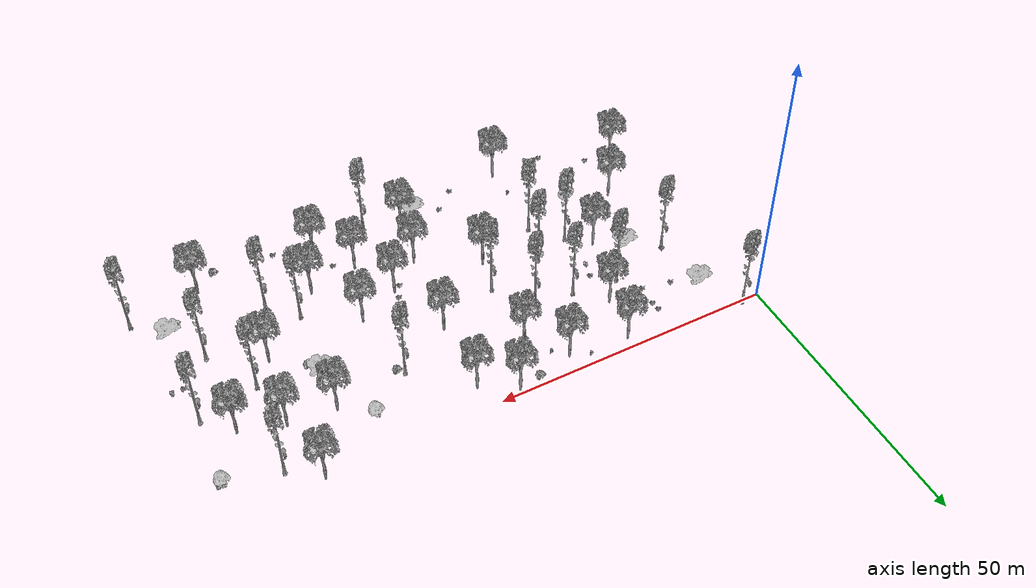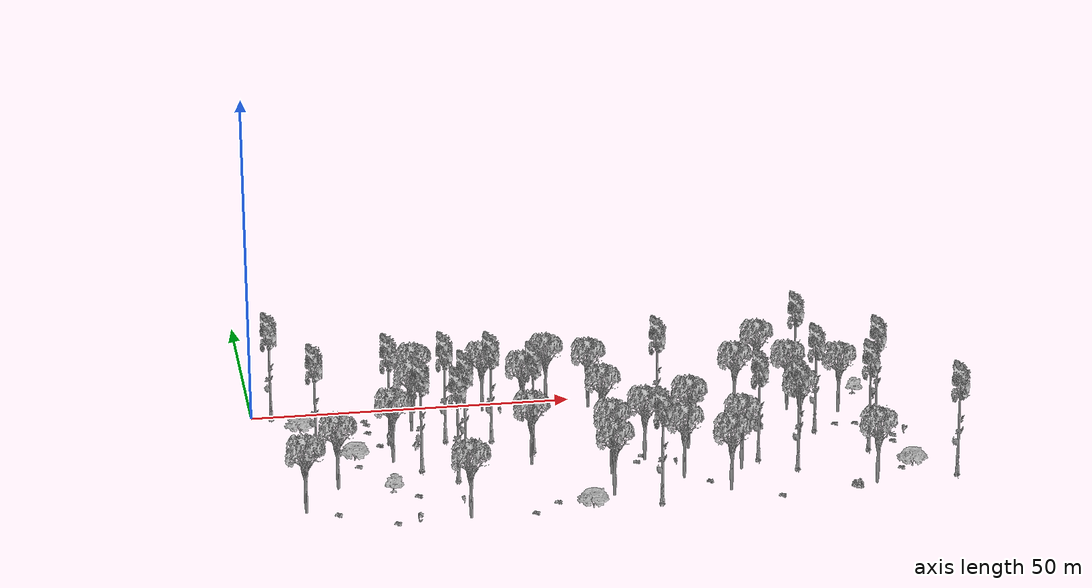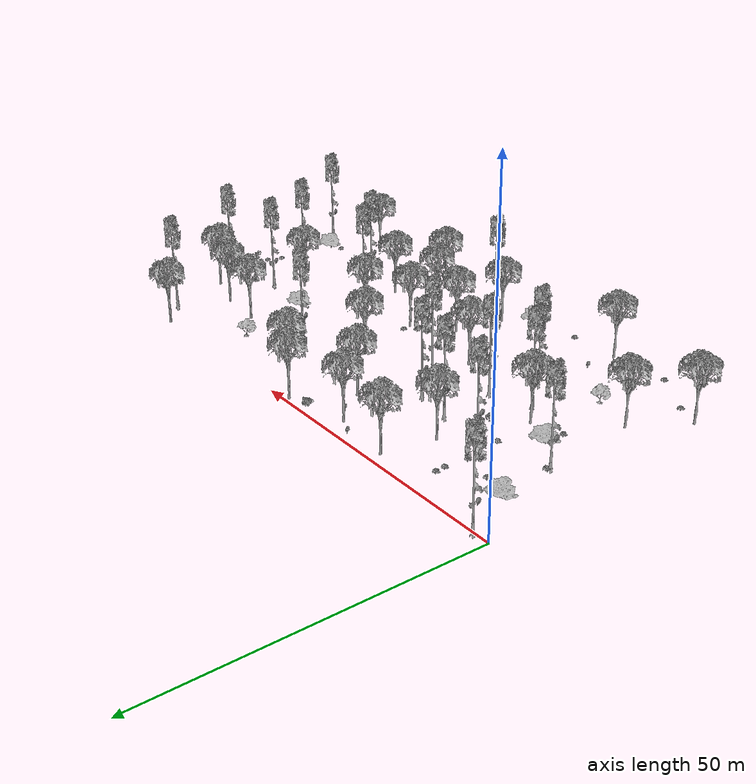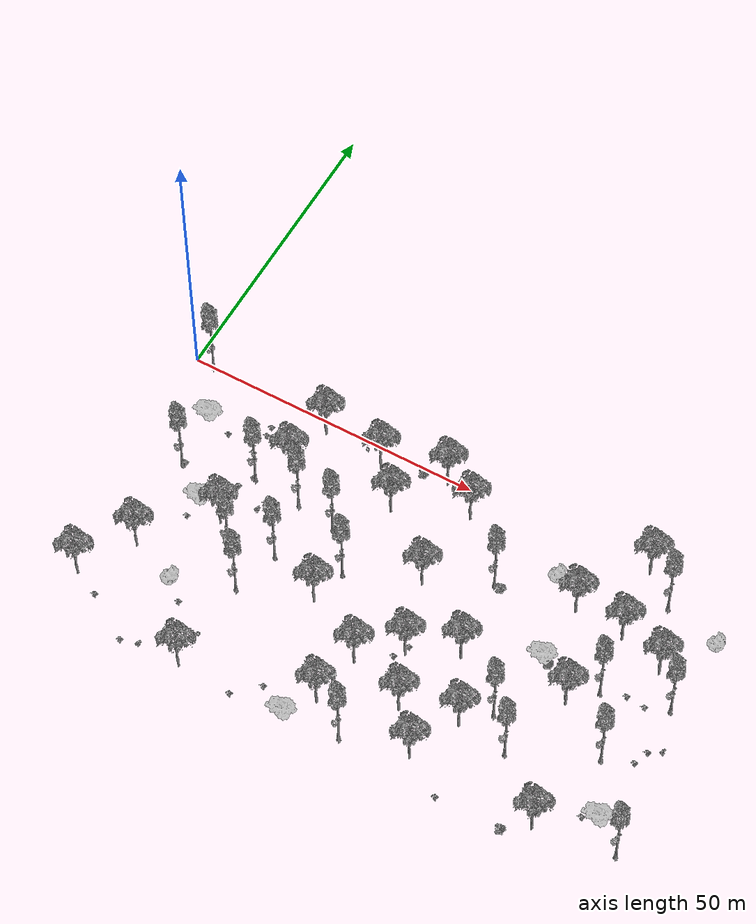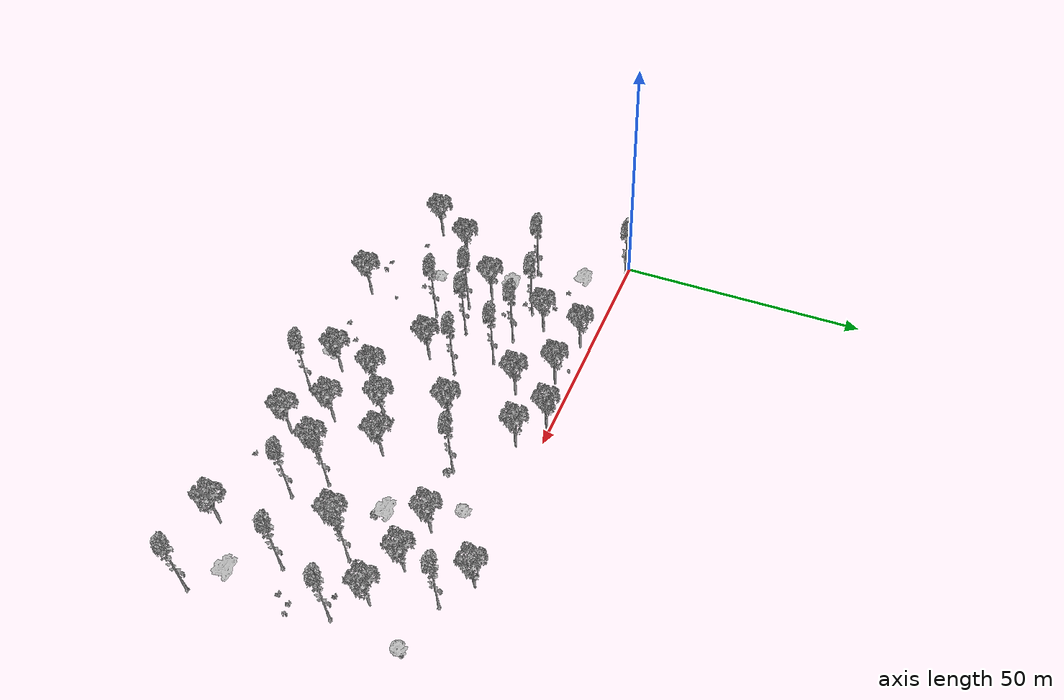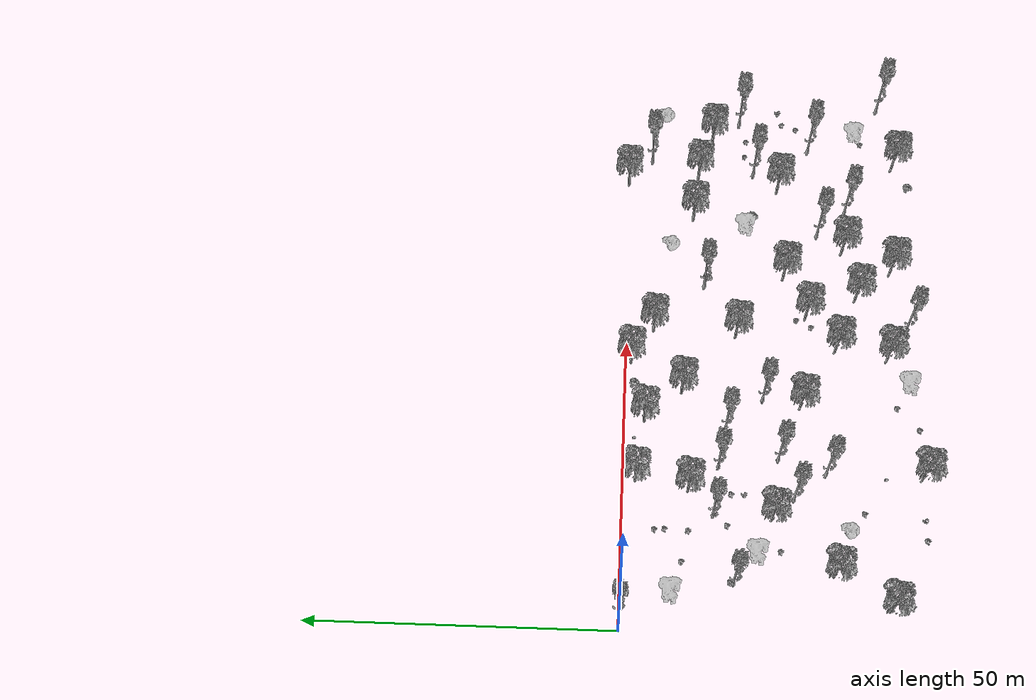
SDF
<sdf version="1.7">
 <world name="forest">
  <model name="controllable_camera">
   <pose>70 0 130 -1.5707 1.5707 0</pose>
   <static>true</static>
   <link name="base_link">
    <inertial><mass>0.1</mass><inertia><ixx>0.0001</ixx><iyy>0.0001</iyy><izz>0.0001</izz></inertia></inertial>
    <sensor name="gui_camera" type="rgbd_camera">
     <camera name="camera_front">
      <horizontal_fov>1.0472</horizontal_fov>
      <lens><intrinsics><fx>277.1</fx><fy>277.1</fy><cx>160.5</cx><cy>120.5</cy><s>0</s></intrinsics></lens>
      <distortion><k1>0.0</k1><k2>0.0</k2><k3>0.0</k3><p1>0.0</p1><p2>0.0</p2><center>0.5 0.5</center></distortion>
      <image><width>240</width><height>240</height><format>R8G8B8</format></image>
      <clip><near>0.01</near><far>300</far></clip>
      <depth_camera><clip><near>0.1</near><far>10</far></clip></depth_camera>
      <noise><type>gaussian</type><mean>0</mean><stddev>0.007</stddev></noise>
     </camera>
     <always_on>true</always_on>
     <update_rate>10</update_rate>
     <visualize>true</visualize>
    </sensor>
    <gravity>0</gravity>
   </link>
  </model>
  <model name="Tree 0">
   <static>1</static>
   <pose>29.54902566851168 -25.515385715936713 0 1.57079 -0 0</pose>
   <link name="link">
    <collision name="collision">
     <geometry><mesh><scale>3.5 5 3.5</scale><uri>model://tree_9/meshes/tree_9.obj</uri></mesh></geometry>
    </collision>
    <visual name="visual">
     <geometry><mesh><scale>3.5 5 3.5</scale><uri>model://tree_9/meshes/tree_9.obj</uri></mesh></geometry>
    </visual>
   </link>
  </model>
  <model name="Tree 3">
   <static>1</static>
   <pose>53.799025668511675 -47.737607938158924 0 1.57079 -0 0</pose>
   <link name="link">
    <collision name="collision">
     <geometry><mesh><scale>3.5 5 3.5</scale><uri>model://tree_9/meshes/tree_9.obj</uri></mesh></geometry>
    </collision>
    <visual name="visual">
     <geometry><mesh><scale>3.5 5 3.5</scale><uri>model://tree_9/meshes/tree_9.obj</uri></mesh></geometry>
    </visual>
   </link>
  </model>
  <model name="Tree 5">
   <static>1</static>
   <pose>90.17402566851167 -14.404274604825588 0 1.57079 -0 0</pose>
   <link name="link">
    <collision name="collision">
     <geometry><mesh><scale>3.5 5 3.5</scale><uri>model://tree_2/meshes/tree_2.obj</uri></mesh></geometry>
    </collision>
    <visual name="visual">
     <geometry><mesh><scale>3.5 5 3.5</scale><uri>model://tree_2/meshes/tree_2.obj</uri></mesh></geometry>
    </visual>
   </link>
  </model>
  <model name="Tree 6">
   <static>1</static>
   <pose>17.42402566851168 -36.62649682704782 0 1.57079 -0 0</pose>
   <link name="link">
    <collision name="collision">
     <geometry><mesh><scale>4 2.5 4</scale><uri>model://tree_1/meshes/tree_1.obj</uri></mesh></geometry>
    </collision>
    <visual name="visual">
     <geometry><mesh><scale>4 2.5 4</scale><uri>model://tree_1/meshes/tree_1.obj</uri></mesh></geometry>
    </visual>
   </link>
  </model>
  <model name="Tree 8">
   <static>1</static>
   <pose>35.611525668511675 -3.2931634937144807 0 1.57079 -0 0</pose>
   <link name="link">
    <collision name="collision">
     <geometry><mesh><scale>3.5 5 3.5</scale><uri>model://tree_2/meshes/tree_2.obj</uri></mesh></geometry>
    </collision>
    <visual name="visual">
     <geometry><mesh><scale>3.5 5 3.5</scale><uri>model://tree_2/meshes/tree_2.obj</uri></mesh></geometry>
    </visual>
   </link>
  </model>
  <model name="Tree 9">
   <static>1</static>
   <pose>84.11152566851167 -21.811682012232996 0 1.57079 -0 0</pose>
   <link name="link">
    <collision name="collision">
     <geometry><mesh><scale>3.5 5 3.5</scale><uri>model://tree_9/meshes/tree_9.obj</uri></mesh></geometry>
    </collision>
    <visual name="visual">
     <geometry><mesh><scale>3.5 5 3.5</scale><uri>model://tree_9/meshes/tree_9.obj</uri></mesh></geometry>
    </visual>
   </link>
  </model>
  <model name="Tree 12">
   <static>1</static>
   <pose>47.736525668511675 -44.03390423445522 0 1.57079 -0 0</pose>
   <link name="link">
    <collision name="collision">
     <geometry><mesh><scale>3.5 5 3.5</scale><uri>model://tree_2/meshes/tree_2.obj</uri></mesh></geometry>
    </collision>
    <visual name="visual">
     <geometry><mesh><scale>3.5 5 3.5</scale><uri>model://tree_2/meshes/tree_2.obj</uri></mesh></geometry>
    </visual>
   </link>
  </model>
  <model name="Tree 14">
   <static>1</static>
   <pose>23.48652566851168 -10.700570901121885 0 1.57079 -0 0</pose>
   <link name="link">
    <collision name="collision">
     <geometry><mesh><scale>3.5 5 3.5</scale><uri>model://tree_2/meshes/tree_2.obj</uri></mesh></geometry>
    </collision>
    <visual name="visual">
     <geometry><mesh><scale>3.5 5 3.5</scale><uri>model://tree_2/meshes/tree_2.obj</uri></mesh></geometry>
    </visual>
   </link>
  </model>
  <model name="Tree 15">
   <static>1</static>
   <pose>71.98652566851167 -32.92279312334412 0 1.57079 -0 0</pose>
   <link name="link">
    <collision name="collision">
     <geometry><mesh><scale>3.5 5 3.5</scale><uri>model://tree_9/meshes/tree_9.obj</uri></mesh></geometry>
    </collision>
    <visual name="visual">
     <geometry><mesh><scale>3.5 5 3.5</scale><uri>model://tree_9/meshes/tree_9.obj</uri></mesh></geometry>
    </visual>
   </link>
  </model>
  <model name="Tree 17">
   <static>1</static>
   <pose>81.08027566851167 0.4105402099892288 0 1.57079 -0 0</pose>
   <link name="link">
    <collision name="collision">
     <geometry><mesh><scale>3.5 5 3.5</scale><uri>model://tree_2/meshes/tree_2.obj</uri></mesh></geometry>
    </collision>
    <visual name="visual">
     <geometry><mesh><scale>3.5 5 3.5</scale><uri>model://tree_2/meshes/tree_2.obj</uri></mesh></geometry>
    </visual>
   </link>
  </model>
  <model name="Tree 18">
   <static>1</static>
   <pose>8.330275668511678 -18.107978308529294 0 1.57079 -0 0</pose>
   <link name="link">
    <collision name="collision">
     <geometry><mesh><scale>3.5 5 3.5</scale><uri>model://tree_9/meshes/tree_9.obj</uri></mesh></geometry>
    </collision>
    <visual name="visual">
     <geometry><mesh><scale>3.5 5 3.5</scale><uri>model://tree_9/meshes/tree_9.obj</uri></mesh></geometry>
    </visual>
   </link>
  </model>
  <model name="Tree 21">
   <static>1</static>
   <pose>93.20527566851167 -40.33020053075151 0 1.57079 -0 0</pose>
   <link name="link">
    <collision name="collision">
     <geometry><mesh><scale>3 2 3</scale><uri>model://tree_3/meshes/tree_3.obj</uri></mesh></geometry>
    </collision>
    <visual name="visual">
     <geometry><mesh><scale>3 2 3</scale><uri>model://tree_3/meshes/tree_3.obj</uri></mesh></geometry>
    </visual>
   </link>
  </model>
  <model name="Tree 23">
   <static>1</static>
   <pose>68.95527566851167 -6.996867197418183 0 1.57079 -0 0</pose>
   <link name="link">
    <collision name="collision">
     <geometry><mesh><scale>4 2.5 4</scale><uri>model://tree_1/meshes/tree_1.obj</uri></mesh></geometry>
    </collision>
    <visual name="visual">
     <geometry><mesh><scale>4 2.5 4</scale><uri>model://tree_1/meshes/tree_1.obj</uri></mesh></geometry>
    </visual>
   </link>
  </model>
  <model name="Tree 24">
   <static>1</static>
   <pose>38.642775668511675 -29.21908941964042 0 1.57079 -0 0</pose>
   <link name="link">
    <collision name="collision">
     <geometry><mesh><scale>3.5 5 3.5</scale><uri>model://tree_2/meshes/tree_2.obj</uri></mesh></geometry>
    </collision>
    <visual name="visual">
     <geometry><mesh><scale>3.5 5 3.5</scale><uri>model://tree_2/meshes/tree_2.obj</uri></mesh></geometry>
    </visual>
   </link>
  </model>
  <model name="Tree 27">
   <static>1</static>
   <pose>62.892775668511675 -26.749953617171283 0 1.57079 -0 0</pose>
   <link name="link">
    <collision name="collision">
     <geometry><mesh><scale>3.5 5 3.5</scale><uri>model://tree_2/meshes/tree_2.obj</uri></mesh></geometry>
    </collision>
    <visual name="visual">
     <geometry><mesh><scale>3.5 5 3.5</scale><uri>model://tree_2/meshes/tree_2.obj</uri></mesh></geometry>
    </visual>
   </link>
  </model>
  <model name="Tree 30">
   <static>1</static>
   <pose>26.51777566851168 -48.97217583939349 0 1.57079 -0 0</pose>
   <link name="link">
    <collision name="collision">
     <geometry><mesh><scale>3.5 5 3.5</scale><uri>model://tree_2/meshes/tree_2.obj</uri></mesh></geometry>
    </collision>
    <visual name="visual">
     <geometry><mesh><scale>3.5 5 3.5</scale><uri>model://tree_2/meshes/tree_2.obj</uri></mesh></geometry>
    </visual>
   </link>
  </model>
  <model name="Tree 32">
   <static>1</static>
   <pose>28.03340066851168 -15.638842506060158 0 1.57079 -0 0</pose>
   <link name="link">
    <collision name="collision">
     <geometry><mesh><scale>3.5 5 3.5</scale><uri>model://tree_9/meshes/tree_9.obj</uri></mesh></geometry>
    </collision>
    <visual name="visual">
     <geometry><mesh><scale>3.5 5 3.5</scale><uri>model://tree_9/meshes/tree_9.obj</uri></mesh></geometry>
    </visual>
   </link>
  </model>
  <model name="Tree 33">
   <static>1</static>
   <pose>76.53340066851167 -37.86106472828238 0 1.57079 -0 0</pose>
   <link name="link">
    <collision name="collision">
     <geometry><mesh><scale>3.5 5 3.5</scale><uri>model://tree_9/meshes/tree_9.obj</uri></mesh></geometry>
    </collision>
    <visual name="visual">
     <geometry><mesh><scale>3.5 5 3.5</scale><uri>model://tree_9/meshes/tree_9.obj</uri></mesh></geometry>
    </visual>
   </link>
  </model>
  <model name="Tree 35">
   <static>1</static>
   <pose>52.283400668511675 -4.5277313949490505 0 1.57079 -0 0</pose>
   <link name="link">
    <collision name="collision">
     <geometry><mesh><scale>3.5 5 3.5</scale><uri>model://tree_2/meshes/tree_2.obj</uri></mesh></geometry>
    </collision>
    <visual name="visual">
     <geometry><mesh><scale>3.5 5 3.5</scale><uri>model://tree_2/meshes/tree_2.obj</uri></mesh></geometry>
    </visual>
   </link>
  </model>
  <model name="Tree 36">
   <static>1</static>
   <pose>40.158400668511675 -23.046249913467566 0 1.57079 -0 0</pose>
   <link name="link">
    <collision name="collision">
     <geometry><mesh><scale>3.5 5 3.5</scale><uri>model://tree_9/meshes/tree_9.obj</uri></mesh></geometry>
    </collision>
    <visual name="visual">
     <geometry><mesh><scale>3.5 5 3.5</scale><uri>model://tree_9/meshes/tree_9.obj</uri></mesh></geometry>
    </visual>
   </link>
  </model>
  <model name="Tree 39">
   <static>1</static>
   <pose>64.40840066851167 -45.26847213568979 0 1.57079 -0 0</pose>
   <link name="link">
    <collision name="collision">
     <geometry><mesh><scale>3.5 5 3.5</scale><uri>model://tree_2/meshes/tree_2.obj</uri></mesh></geometry>
    </collision>
    <visual name="visual">
     <geometry><mesh><scale>3.5 5 3.5</scale><uri>model://tree_2/meshes/tree_2.obj</uri></mesh></geometry>
    </visual>
   </link>
  </model>
  <model name="Tree 41">
   <static>1</static>
   <pose>82.59590066851167 -11.935138802356455 0 1.57079 -0 0</pose>
   <link name="link">
    <collision name="collision">
     <geometry><mesh><scale>3.5 5 3.5</scale><uri>model://tree_2/meshes/tree_2.obj</uri></mesh></geometry>
    </collision>
    <visual name="visual">
     <geometry><mesh><scale>3.5 5 3.5</scale><uri>model://tree_2/meshes/tree_2.obj</uri></mesh></geometry>
    </visual>
   </link>
  </model>
  <model name="Tree 42">
   <static>1</static>
   <pose>9.845900668511678 -34.15736102457869 0 1.57079 -0 0</pose>
   <link name="link">
    <collision name="collision">
     <geometry><mesh><scale>3.5 5 3.5</scale><uri>model://tree_2/meshes/tree_2.obj</uri></mesh></geometry>
    </collision>
    <visual name="visual">
     <geometry><mesh><scale>3.5 5 3.5</scale><uri>model://tree_2/meshes/tree_2.obj</uri></mesh></geometry>
    </visual>
   </link>
  </model>
  <model name="Tree 44">
   <static>1</static>
   <pose>46.220900668511675 -0.824027691245341 0 1.57079 -0 0</pose>
   <link name="link">
    <collision name="collision">
     <geometry><mesh><scale>3.5 5 3.5</scale><uri>model://tree_2/meshes/tree_2.obj</uri></mesh></geometry>
    </collision>
    <visual name="visual">
     <geometry><mesh><scale>3.5 5 3.5</scale><uri>model://tree_2/meshes/tree_2.obj</uri></mesh></geometry>
    </visual>
   </link>
  </model>
  <model name="Tree 45">
   <static>1</static>
   <pose>94.72090066851167 -19.34254620976386 0 1.57079 -0 0</pose>
   <link name="link">
    <collision name="collision">
     <geometry><mesh><scale>3.5 5 3.5</scale><uri>model://tree_9/meshes/tree_9.obj</uri></mesh></geometry>
    </collision>
    <visual name="visual">
     <geometry><mesh><scale>3.5 5 3.5</scale><uri>model://tree_9/meshes/tree_9.obj</uri></mesh></geometry>
    </visual>
   </link>
  </model>
  <model name="Tree 50">
   <static>1</static>
   <pose>6.8146506685116774 -8.231435098652753 0 1.57079 -0 0</pose>
   <link name="link">
    <collision name="collision">
     <geometry><mesh><scale>3 2 3</scale><uri>model://tree_3/meshes/tree_3.obj</uri></mesh></geometry>
    </collision>
    <visual name="visual">
     <geometry><mesh><scale>3 2 3</scale><uri>model://tree_3/meshes/tree_3.obj</uri></mesh></geometry>
    </visual>
   </link>
  </model>
  <model name="Tree 51">
   <static>1</static>
   <pose>55.314650668511675 -30.453657320874985 0 1.57079 -0 0</pose>
   <link name="link">
    <collision name="collision">
     <geometry><mesh><scale>3.5 5 3.5</scale><uri>model://tree_2/meshes/tree_2.obj</uri></mesh></geometry>
    </collision>
    <visual name="visual">
     <geometry><mesh><scale>3.5 5 3.5</scale><uri>model://tree_2/meshes/tree_2.obj</uri></mesh></geometry>
    </visual>
   </link>
  </model>
  <model name="Tree 54">
   <static>1</static>
   <pose>18.93965066851168 -24.280817814702132 0 1.57079 -0 0</pose>
   <link name="link">
    <collision name="collision">
     <geometry><mesh><scale>3.5 5 3.5</scale><uri>model://tree_2/meshes/tree_2.obj</uri></mesh></geometry>
    </collision>
    <visual name="visual">
     <geometry><mesh><scale>3.5 5 3.5</scale><uri>model://tree_2/meshes/tree_2.obj</uri></mesh></geometry>
    </visual>
   </link>
  </model>
  <model name="Tree 57">
   <static>1</static>
   <pose>85.62715066851167 -46.503040036924354 0 1.57079 -0 0</pose>
   <link name="link">
    <collision name="collision">
     <geometry><mesh><scale>3.5 5 3.5</scale><uri>model://tree_2/meshes/tree_2.obj</uri></mesh></geometry>
    </collision>
    <visual name="visual">
     <geometry><mesh><scale>3.5 5 3.5</scale><uri>model://tree_2/meshes/tree_2.obj</uri></mesh></geometry>
    </visual>
   </link>
  </model>
  <model name="Tree 59">
   <static>1</static>
   <pose>61.377150668511675 -13.169706703591025 0 1.57079 -0 0</pose>
   <link name="link">
    <collision name="collision">
     <geometry><mesh><scale>3.5 5 3.5</scale><uri>model://tree_9/meshes/tree_9.obj</uri></mesh></geometry>
    </collision>
    <visual name="visual">
     <geometry><mesh><scale>3.5 5 3.5</scale><uri>model://tree_9/meshes/tree_9.obj</uri></mesh></geometry>
    </visual>
   </link>
  </model>
  <model name="Tree 60">
   <static>1</static>
   <pose>49.252150668511675 -35.39192892581326 0 1.57079 -0 0</pose>
   <link name="link">
    <collision name="collision">
     <geometry><mesh><scale>3.5 5 3.5</scale><uri>model://tree_2/meshes/tree_2.obj</uri></mesh></geometry>
    </collision>
    <visual name="visual">
     <geometry><mesh><scale>3.5 5 3.5</scale><uri>model://tree_2/meshes/tree_2.obj</uri></mesh></geometry>
    </visual>
   </link>
  </model>
  <model name="Tree 62">
   <static>1</static>
   <pose>25.00215066851168 -2.058595592479911 0 1.57079 -0 0</pose>
   <link name="link">
    <collision name="collision">
     <geometry><mesh><scale>3.5 5 3.5</scale><uri>model://tree_2/meshes/tree_2.obj</uri></mesh></geometry>
    </collision>
    <visual name="visual">
     <geometry><mesh><scale>3.5 5 3.5</scale><uri>model://tree_2/meshes/tree_2.obj</uri></mesh></geometry>
    </visual>
   </link>
  </model>
  <model name="Tree 63">
   <static>1</static>
   <pose>73.50215066851167 -20.57711411099843 0 1.57079 -0 0</pose>
   <link name="link">
    <collision name="collision">
     <geometry><mesh><scale>3 2 3</scale><uri>model://tree_3/meshes/tree_3.obj</uri></mesh></geometry>
    </collision>
    <visual name="visual">
     <geometry><mesh><scale>3 2 3</scale><uri>model://tree_3/meshes/tree_3.obj</uri></mesh></geometry>
    </visual>
   </link>
  </model>
  <model name="Tree 66">
   <static>1</static>
   <pose>4.5412131685116774 -42.79933633322065 0 1.57079 -0 0</pose>
   <link name="link">
    <collision name="collision">
     <geometry><mesh><scale>3.5 5 3.5</scale><uri>model://tree_2/meshes/tree_2.obj</uri></mesh></geometry>
    </collision>
    <visual name="visual">
     <geometry><mesh><scale>3.5 5 3.5</scale><uri>model://tree_2/meshes/tree_2.obj</uri></mesh></geometry>
    </visual>
   </link>
  </model>
  <model name="Tree 68">
   <static>1</static>
   <pose>40.916213168511675 -9.466002999887316 0 1.57079 -0 0</pose>
   <link name="link">
    <collision name="collision">
     <geometry><mesh><scale>3.5 5 3.5</scale><uri>model://tree_2/meshes/tree_2.obj</uri></mesh></geometry>
    </collision>
    <visual name="visual">
     <geometry><mesh><scale>3.5 5 3.5</scale><uri>model://tree_2/meshes/tree_2.obj</uri></mesh></geometry>
    </visual>
   </link>
  </model>
  <model name="Tree 69">
   <static>1</static>
   <pose>89.41621316851167 -31.688225222109555 0 1.57079 -0 0</pose>
   <link name="link">
    <collision name="collision">
     <geometry><mesh><scale>3.5 5 3.5</scale><uri>model://tree_9/meshes/tree_9.obj</uri></mesh></geometry>
    </collision>
    <visual name="visual">
     <geometry><mesh><scale>3.5 5 3.5</scale><uri>model://tree_9/meshes/tree_9.obj</uri></mesh></geometry>
    </visual>
   </link>
  </model>
  <model name="Tree 72">
   <static>1</static>
   <pose>34.853713168511675 -16.873410407294728 0 1.57079 -0 0</pose>
   <link name="link">
    <collision name="collision">
     <geometry><mesh><scale>3.5 5 3.5</scale><uri>model://tree_9/meshes/tree_9.obj</uri></mesh></geometry>
    </collision>
    <visual name="visual">
     <geometry><mesh><scale>3.5 5 3.5</scale><uri>model://tree_9/meshes/tree_9.obj</uri></mesh></geometry>
    </visual>
   </link>
  </model>
  <model name="Tree 75">
   <static>1</static>
   <pose>59.103713168511675 -39.09563262951695 0 1.57079 -0 0</pose>
   <link name="link">
    <collision name="collision">
     <geometry><mesh><scale>3.5 5 3.5</scale><uri>model://tree_2/meshes/tree_2.obj</uri></mesh></geometry>
    </collision>
    <visual name="visual">
     <geometry><mesh><scale>3.5 5 3.5</scale><uri>model://tree_2/meshes/tree_2.obj</uri></mesh></geometry>
    </visual>
   </link>
  </model>
  <model name="Tree 77">
   <static>1</static>
   <pose>95.47871316851167 -5.762299296183613 0 1.57079 -0 0</pose>
   <link name="link">
    <collision name="collision">
     <geometry><mesh><scale>4 2.5 4</scale><uri>model://tree_1/meshes/tree_1.obj</uri></mesh></geometry>
    </collision>
    <visual name="visual">
     <geometry><mesh><scale>4 2.5 4</scale><uri>model://tree_1/meshes/tree_1.obj</uri></mesh></geometry>
    </visual>
   </link>
  </model>
  <model name="Tree 78">
   <static>1</static>
   <pose>22.72871316851168 -27.98452151840585 0 1.57079 -0 0</pose>
   <link name="link">
    <collision name="collision">
     <geometry><mesh><scale>3.5 5 3.5</scale><uri>model://tree_9/meshes/tree_9.obj</uri></mesh></geometry>
    </collision>
    <visual name="visual">
     <geometry><mesh><scale>3.5 5 3.5</scale><uri>model://tree_9/meshes/tree_9.obj</uri></mesh></geometry>
    </visual>
   </link>
  </model>
  <model name="Tree 81">
   <static>1</static>
   <pose>80.32246316851167 -25.926908349681568 0 1.57079 -0 0</pose>
   <link name="link">
    <collision name="collision">
     <geometry><mesh><scale>3.5 5 3.5</scale><uri>model://tree_2/meshes/tree_2.obj</uri></mesh></geometry>
    </collision>
    <visual name="visual">
     <geometry><mesh><scale>3.5 5 3.5</scale><uri>model://tree_2/meshes/tree_2.obj</uri></mesh></geometry>
    </visual>
   </link>
  </model>
  <model name="Tree 84">
   <static>1</static>
   <pose>43.947463168511675 -48.14913057190378 0 1.57079 -0 0</pose>
   <link name="link">
    <collision name="collision">
     <geometry><mesh><scale>3 2 3</scale><uri>model://tree_3/meshes/tree_3.obj</uri></mesh></geometry>
    </collision>
    <visual name="visual">
     <geometry><mesh><scale>3 2 3</scale><uri>model://tree_3/meshes/tree_3.obj</uri></mesh></geometry>
    </visual>
   </link>
  </model>
  <model name="Tree 86">
   <static>1</static>
   <pose>19.69746316851168 -14.815797238570447 0 1.57079 -0 0</pose>
   <link name="link">
    <collision name="collision">
     <geometry><mesh><scale>3.5 5 3.5</scale><uri>model://tree_9/meshes/tree_9.obj</uri></mesh></geometry>
    </collision>
    <visual name="visual">
     <geometry><mesh><scale>3.5 5 3.5</scale><uri>model://tree_9/meshes/tree_9.obj</uri></mesh></geometry>
    </visual>
   </link>
  </model>
  <model name="Tree 87">
   <static>1</static>
   <pose>68.19746316851167 -37.03801946079268 0 1.57079 -0 0</pose>
   <link name="link">
    <collision name="collision">
     <geometry><mesh><scale>3.5 5 3.5</scale><uri>model://tree_2/meshes/tree_2.obj</uri></mesh></geometry>
    </collision>
    <visual name="visual">
     <geometry><mesh><scale>3.5 5 3.5</scale><uri>model://tree_2/meshes/tree_2.obj</uri></mesh></geometry>
    </visual>
   </link>
  </model>
  <model name="Tree 89">
   <static>1</static>
   <pose>86.38496316851167 -3.7046861274593397 0 1.57079 -0 0</pose>
   <link name="link">
    <collision name="collision">
     <geometry><mesh><scale>3.5 5 3.5</scale><uri>model://tree_9/meshes/tree_9.obj</uri></mesh></geometry>
    </collision>
    <visual name="visual">
     <geometry><mesh><scale>3.5 5 3.5</scale><uri>model://tree_9/meshes/tree_9.obj</uri></mesh></geometry>
    </visual>
   </link>
  </model>
  <model name="Tree 90">
   <static>1</static>
   <pose>13.634963168511678 -22.223204645977855 0 1.57079 -0 0</pose>
   <link name="link">
    <collision name="collision">
     <geometry><mesh><scale>3 2 3</scale><uri>model://tree_3/meshes/tree_3.obj</uri></mesh></geometry>
    </collision>
    <visual name="visual">
     <geometry><mesh><scale>3 2 3</scale><uri>model://tree_3/meshes/tree_3.obj</uri></mesh></geometry>
    </visual>
   </link>
  </model>
  <model name="Tree 93">
   <static>1</static>
   <pose>98.50996316851167 -44.44542686820007 0 1.57079 -0 0</pose>
   <link name="link">
    <collision name="collision">
     <geometry><mesh><scale>3.5 5 3.5</scale><uri>model://tree_9/meshes/tree_9.obj</uri></mesh></geometry>
    </collision>
    <visual name="visual">
     <geometry><mesh><scale>3.5 5 3.5</scale><uri>model://tree_9/meshes/tree_9.obj</uri></mesh></geometry>
    </visual>
   </link>
  </model>
  <model name="Tree 95">
   <static>1</static>
   <pose>74.25996316851167 -11.112093534866744 0 1.57079 -0 0</pose>
   <link name="link">
    <collision name="collision">
     <geometry><mesh><scale>3.5 5 3.5</scale><uri>model://tree_2/meshes/tree_2.obj</uri></mesh></geometry>
    </collision>
    <visual name="visual">
     <geometry><mesh><scale>3.5 5 3.5</scale><uri>model://tree_2/meshes/tree_2.obj</uri></mesh></geometry>
    </visual>
   </link>
  </model>
  <model name="Tree 96">
   <static>1</static>
   <pose>27.27558816851168 -33.33431575708897 0 1.57079 -0 0</pose>
   <link name="link">
    <collision name="collision">
     <geometry><mesh><scale>3.5 5 3.5</scale><uri>model://tree_9/meshes/tree_9.obj</uri></mesh></geometry>
    </collision>
    <visual name="visual">
     <geometry><mesh><scale>3.5 5 3.5</scale><uri>model://tree_9/meshes/tree_9.obj</uri></mesh></geometry>
    </visual>
   </link>
  </model>
  <model name="Tree 98">
   <static>1</static>
   <pose>3.0255881685116774 -0.000982423755637285 0 1.57079 -0 0</pose>
   <link name="link">
    <collision name="collision">
     <geometry><mesh><scale>3.5 5 3.5</scale><uri>model://tree_9/meshes/tree_9.obj</uri></mesh></geometry>
    </collision>
    <visual name="visual">
     <geometry><mesh><scale>3.5 5 3.5</scale><uri>model://tree_9/meshes/tree_9.obj</uri></mesh></geometry>
    </visual>
   </link>
  </model>
  <model name="Tree 99">
   <static>1</static>
   <pose>51.525588168511675 -18.519500942274153 0 1.57079 -0 0</pose>
   <link name="link">
    <collision name="collision">
     <geometry><mesh><scale>3.5 5 3.5</scale><uri>model://tree_2/meshes/tree_2.obj</uri></mesh></geometry>
    </collision>
    <visual name="visual">
     <geometry><mesh><scale>3.5 5 3.5</scale><uri>model://tree_2/meshes/tree_2.obj</uri></mesh></geometry>
    </visual>
   </link>
  </model>
  <model name="Bush 3">
   <static>1</static>
   <pose>94.82517812543531 -27.135149597632534 0 1.57079 -0 0</pose>
   <link name="link">
    <collision name="collision">
     <geometry><mesh><scale>2 2 2</scale><uri>model://bush_2/meshes/bush_2.obj</uri></mesh></geometry>
     <surface><contact><collide_without_contact>false</collide_without_contact></contact></surface>
    </collision>
    <visual name="visual">
     <geometry><mesh><scale>2 2 2</scale><uri>model://bush_2/meshes/bush_2.obj</uri></mesh></geometry>
    </visual>
   </link>
  </model>
  <model name="Bush 4">
   <static>1</static>
   <pose>96.85591203771573 -26.32050582930069 0 1.57079 -0 0</pose>
   <link name="link">
    <collision name="collision">
     <geometry><mesh><scale>2 2 2</scale><uri>model://bush_4/meshes/bush_4.obj</uri></mesh></geometry>
     <surface><contact><collide_without_contact>false</collide_without_contact></contact></surface>
    </collision>
    <visual name="visual">
     <geometry><mesh><scale>2 2 2</scale><uri>model://bush_4/meshes/bush_4.obj</uri></mesh></geometry>
    </visual>
   </link>
  </model>
  <model name="Bush 6">
   <static>1</static>
   <pose>87.81555832895707 -20.316118214543256 0 1.57079 -0 0</pose>
   <link name="link">
    <collision name="collision">
     <geometry><mesh><scale>2 2 2</scale><uri>model://bush_2/meshes/bush_2.obj</uri></mesh></geometry>
     <surface><contact><collide_without_contact>false</collide_without_contact></contact></surface>
    </collision>
    <visual name="visual">
     <geometry><mesh><scale>2 2 2</scale><uri>model://bush_2/meshes/bush_2.obj</uri></mesh></geometry>
    </visual>
   </link>
  </model>
  <model name="Bush 7">
   <static>1</static>
   <pose>39.450430215995155 -45.68079912641553 0 1.57079 -0 0</pose>
   <link name="link">
    <collision name="collision">
     <geometry><mesh><scale>2 2 2</scale><uri>model://bush_2/meshes/bush_2.obj</uri></mesh></geometry>
     <surface><contact><collide_without_contact>false</collide_without_contact></contact></surface>
    </collision>
    <visual name="visual">
     <geometry><mesh><scale>2 2 2</scale><uri>model://bush_2/meshes/bush_2.obj</uri></mesh></geometry>
    </visual>
   </link>
  </model>
  <model name="Bush 10">
   <static>1</static>
   <pose>62.62834231994888 -13.763706598443903 0 1.57079 -0 0</pose>
   <link name="link">
    <collision name="collision">
     <geometry><mesh><scale>2 2 2</scale><uri>model://bush_1/meshes/bush_1.obj</uri></mesh></geometry>
     <surface><contact><collide_without_contact>false</collide_without_contact></contact></surface>
    </collision>
    <visual name="visual">
     <geometry><mesh><scale>2 2 2</scale><uri>model://bush_1/meshes/bush_1.obj</uri></mesh></geometry>
    </visual>
   </link>
  </model>
  <model name="Bush 12">
   <static>1</static>
   <pose>17.943064436556227 -17.131422127005806 0 1.57079 -0 0</pose>
   <link name="link">
    <collision name="collision">
     <geometry><mesh><scale>2 2 2</scale><uri>model://bush_2/meshes/bush_2.obj</uri></mesh></geometry>
     <surface><contact><collide_without_contact>false</collide_without_contact></contact></surface>
    </collision>
    <visual name="visual">
     <geometry><mesh><scale>2 2 2</scale><uri>model://bush_2/meshes/bush_2.obj</uri></mesh></geometry>
    </visual>
   </link>
  </model>
  <model name="Bush 13">
   <static>1</static>
   <pose>8.863495406520176 -44.73737578905303 0 1.57079 -0 0</pose>
   <link name="link">
    <collision name="collision">
     <geometry><mesh><scale>2 2 2</scale><uri>model://bush_2/meshes/bush_2.obj</uri></mesh></geometry>
     <surface><contact><collide_without_contact>false</collide_without_contact></contact></surface>
    </collision>
    <visual name="visual">
     <geometry><mesh><scale>2 2 2</scale><uri>model://bush_2/meshes/bush_2.obj</uri></mesh></geometry>
    </visual>
   </link>
  </model>
  <model name="Bush 14">
   <static>1</static>
   <pose>91.17971980824798 -41.290022047325024 0 1.57079 -0 0</pose>
   <link name="link">
    <collision name="collision">
     <geometry><mesh><scale>2 2 2</scale><uri>model://bush_2/meshes/bush_2.obj</uri></mesh></geometry>
     <surface><contact><collide_without_contact>false</collide_without_contact></contact></surface>
    </collision>
    <visual name="visual">
     <geometry><mesh><scale>2 2 2</scale><uri>model://bush_2/meshes/bush_2.obj</uri></mesh></geometry>
    </visual>
   </link>
  </model>
  <model name="Bush 15">
   <static>1</static>
   <pose>26.590516185562482 -43.116865367209556 0 1.57079 -0 0</pose>
   <link name="link">
    <collision name="collision">
     <geometry><mesh><scale>2 2 2</scale><uri>model://bush_0/meshes/bush_0.obj</uri></mesh></geometry>
     <surface><contact><collide_without_contact>false</collide_without_contact></contact></surface>
    </collision>
    <visual name="visual">
     <geometry><mesh><scale>2 2 2</scale><uri>model://bush_0/meshes/bush_0.obj</uri></mesh></geometry>
    </visual>
   </link>
  </model>
  <model name="Bush 21">
   <static>1</static>
   <pose>90.95945090265776 -20.628487889358947 0 1.57079 -0 0</pose>
   <link name="link">
    <collision name="collision">
     <geometry><mesh><scale>2 2 2</scale><uri>model://bush_2/meshes/bush_2.obj</uri></mesh></geometry>
     <surface><contact><collide_without_contact>false</collide_without_contact></contact></surface>
    </collision>
    <visual name="visual">
     <geometry><mesh><scale>2 2 2</scale><uri>model://bush_2/meshes/bush_2.obj</uri></mesh></geometry>
    </visual>
   </link>
  </model>
  <model name="Bush 22">
   <static>1</static>
   <pose>16.9108703805664 -5.342708849528243 0 1.57079 -0 0</pose>
   <link name="link">
    <collision name="collision">
     <geometry><mesh><scale>2 2 2</scale><uri>model://bush_2/meshes/bush_2.obj</uri></mesh></geometry>
     <surface><contact><collide_without_contact>false</collide_without_contact></contact></surface>
    </collision>
    <visual name="visual">
     <geometry><mesh><scale>2 2 2</scale><uri>model://bush_2/meshes/bush_2.obj</uri></mesh></geometry>
    </visual>
   </link>
  </model>
  <model name="Bush 27">
   <static>1</static>
   <pose>96.04619906670504 -5.693126026930642 0 1.57079 -0 0</pose>
   <link name="link">
    <collision name="collision">
     <geometry><mesh><scale>2 2 2</scale><uri>model://bush_1/meshes/bush_1.obj</uri></mesh></geometry>
     <surface><contact><collide_without_contact>false</collide_without_contact></contact></surface>
    </collision>
    <visual name="visual">
     <geometry><mesh><scale>2 2 2</scale><uri>model://bush_1/meshes/bush_1.obj</uri></mesh></geometry>
    </visual>
   </link>
  </model>
  <model name="Bush 29">
   <static>1</static>
   <pose>81.90383464510778 -49.39572750277712 0 1.57079 -0 0</pose>
   <link name="link">
    <collision name="collision">
     <geometry><mesh><scale>2 2 2</scale><uri>model://bush_1/meshes/bush_1.obj</uri></mesh></geometry>
     <surface><contact><collide_without_contact>false</collide_without_contact></contact></surface>
    </collision>
    <visual name="visual">
     <geometry><mesh><scale>2 2 2</scale><uri>model://bush_1/meshes/bush_1.obj</uri></mesh></geometry>
    </visual>
   </link>
  </model>
  <model name="Bush 30">
   <static>1</static>
   <pose>62.386311509448845 -41.5060128469012 0 1.57079 -0 0</pose>
   <link name="link">
    <collision name="collision">
     <geometry><mesh><scale>2 2 2</scale><uri>model://bush_2/meshes/bush_2.obj</uri></mesh></geometry>
     <surface><contact><collide_without_contact>false</collide_without_contact></contact></surface>
    </collision>
    <visual name="visual">
     <geometry><mesh><scale>2 2 2</scale><uri>model://bush_2/meshes/bush_2.obj</uri></mesh></geometry>
    </visual>
   </link>
  </model>
  <model name="Bush 34">
   <static>1</static>
   <pose>35.62826666965279 -49.25668286728779 0 1.57079 -0 0</pose>
   <link name="link">
    <collision name="collision">
     <geometry><mesh><scale>2 2 2</scale><uri>model://bush_2/meshes/bush_2.obj</uri></mesh></geometry>
     <surface><contact><collide_without_contact>false</collide_without_contact></contact></surface>
    </collision>
    <visual name="visual">
     <geometry><mesh><scale>2 2 2</scale><uri>model://bush_2/meshes/bush_2.obj</uri></mesh></geometry>
    </visual>
   </link>
  </model>
  <model name="Bush 35">
   <static>1</static>
   <pose>23.29973969812187 -17.80882429539014 0 1.57079 -0 0</pose>
   <link name="link">
    <collision name="collision">
     <geometry><mesh><scale>2 2 2</scale><uri>model://bush_2/meshes/bush_2.obj</uri></mesh></geometry>
     <surface><contact><collide_without_contact>false</collide_without_contact></contact></surface>
    </collision>
    <visual name="visual">
     <geometry><mesh><scale>2 2 2</scale><uri>model://bush_2/meshes/bush_2.obj</uri></mesh></geometry>
    </visual>
   </link>
  </model>
  <model name="Bush 37">
   <static>1</static>
   <pose>20.676957108020062 -39.53624558011363 0 1.57079 -0 0</pose>
   <link name="link">
    <collision name="collision">
     <geometry><mesh><scale>2 2 2</scale><uri>model://bush_2/meshes/bush_2.obj</uri></mesh></geometry>
     <surface><contact><collide_without_contact>false</collide_without_contact></contact></surface>
    </collision>
    <visual name="visual">
     <geometry><mesh><scale>2 2 2</scale><uri>model://bush_2/meshes/bush_2.obj</uri></mesh></geometry>
    </visual>
   </link>
  </model>
  <model name="Bush 39">
   <static>1</static>
   <pose>19.48908027457453 -15.179155993292603 0 1.57079 -0 0</pose>
   <link name="link">
    <collision name="collision">
     <geometry><mesh><scale>2 2 2</scale><uri>model://bush_4/meshes/bush_4.obj</uri></mesh></geometry>
     <surface><contact><collide_without_contact>false</collide_without_contact></contact></surface>
    </collision>
    <visual name="visual">
     <geometry><mesh><scale>2 2 2</scale><uri>model://bush_4/meshes/bush_4.obj</uri></mesh></geometry>
    </visual>
   </link>
  </model>
  <model name="Bush 41">
   <static>1</static>
   <pose>32.54019389890788 -1.6647540482757321 0 1.57079 -0 0</pose>
   <link name="link">
    <collision name="collision">
     <geometry><mesh><scale>2 2 2</scale><uri>model://bush_0/meshes/bush_0.obj</uri></mesh></geometry>
     <surface><contact><collide_without_contact>false</collide_without_contact></contact></surface>
    </collision>
    <visual name="visual">
     <geometry><mesh><scale>2 2 2</scale><uri>model://bush_0/meshes/bush_0.obj</uri></mesh></geometry>
    </visual>
   </link>
  </model>
  <model name="Bush 42">
   <static>1</static>
   <pose>8.498020114982001 -17.599055835083433 0 1.57079 -0 0</pose>
   <link name="link">
    <collision name="collision">
     <geometry><mesh><scale>2 2 2</scale><uri>model://bush_2/meshes/bush_2.obj</uri></mesh></geometry>
     <surface><contact><collide_without_contact>false</collide_without_contact></contact></surface>
    </collision>
    <visual name="visual">
     <geometry><mesh><scale>2 2 2</scale><uri>model://bush_2/meshes/bush_2.obj</uri></mesh></geometry>
    </visual>
   </link>
  </model>
  <model name="Bush 44">
   <static>1</static>
   <pose>55.22577929553563 -29.0428669586716 0 1.57079 -0 0</pose>
   <link name="link">
    <collision name="collision">
     <geometry><mesh><scale>2 2 2</scale><uri>model://bush_2/meshes/bush_2.obj</uri></mesh></geometry>
     <surface><contact><collide_without_contact>false</collide_without_contact></contact></surface>
    </collision>
    <visual name="visual">
     <geometry><mesh><scale>2 2 2</scale><uri>model://bush_2/meshes/bush_2.obj</uri></mesh></geometry>
    </visual>
   </link>
  </model>
  <model name="Bush 48">
   <static>1</static>
   <pose>42.31469089506219 -1.5630409990734648 0 1.57079 -0 0</pose>
   <link name="link">
    <collision name="collision">
     <geometry><mesh><scale>2 2 2</scale><uri>model://bush_1/meshes/bush_1.obj</uri></mesh></geometry>
     <surface><contact><collide_without_contact>false</collide_without_contact></contact></surface>
    </collision>
    <visual name="visual">
     <geometry><mesh><scale>2 2 2</scale><uri>model://bush_1/meshes/bush_1.obj</uri></mesh></geometry>
    </visual>
   </link>
  </model>
  <model name="Bush 49">
   <static>1</static>
   <pose>70.88065811138888 -49.083137107384175 0 1.57079 -0 0</pose>
   <link name="link">
    <collision name="collision">
     <geometry><mesh><scale>2 2 2</scale><uri>model://bush_2/meshes/bush_2.obj</uri></mesh></geometry>
     <surface><contact><collide_without_contact>false</collide_without_contact></contact></surface>
    </collision>
    <visual name="visual">
     <geometry><mesh><scale>2 2 2</scale><uri>model://bush_2/meshes/bush_2.obj</uri></mesh></geometry>
    </visual>
   </link>
  </model>
  <model name="Bush 51">
   <static>1</static>
   <pose>38.2210717222792 -5.183688855937 0 1.57079 -0 0</pose>
   <link name="link">
    <collision name="collision">
     <geometry><mesh><scale>2 2 2</scale><uri>model://bush_0/meshes/bush_0.obj</uri></mesh></geometry>
     <surface><contact><collide_without_contact>false</collide_without_contact></contact></surface>
    </collision>
    <visual name="visual">
     <geometry><mesh><scale>2 2 2</scale><uri>model://bush_0/meshes/bush_0.obj</uri></mesh></geometry>
    </visual>
   </link>
  </model>
  <model name="Bush 56">
   <static>1</static>
   <pose>22.963558577145296 -19.86179744519174 0 1.57079 -0 0</pose>
   <link name="link">
    <collision name="collision">
     <geometry><mesh><scale>2 2 2</scale><uri>model://bush_4/meshes/bush_4.obj</uri></mesh></geometry>
     <surface><contact><collide_without_contact>false</collide_without_contact></contact></surface>
    </collision>
    <visual name="visual">
     <geometry><mesh><scale>2 2 2</scale><uri>model://bush_4/meshes/bush_4.obj</uri></mesh></geometry>
    </visual>
   </link>
  </model>
  <model name="Bush 57">
   <static>1</static>
   <pose>17.071590878574398 -6.99769523738086 0 1.57079 -0 0</pose>
   <link name="link">
    <collision name="collision">
     <geometry><mesh><scale>2 2 2</scale><uri>model://bush_2/meshes/bush_2.obj</uri></mesh></geometry>
     <surface><contact><collide_without_contact>false</collide_without_contact></contact></surface>
    </collision>
    <visual name="visual">
     <geometry><mesh><scale>2 2 2</scale><uri>model://bush_2/meshes/bush_2.obj</uri></mesh></geometry>
    </visual>
   </link>
  </model>
  <model name="Bush 59">
   <static>1</static>
   <pose>16.81050104453596 -10.820909225884392 0 1.57079 -0 0</pose>
   <link name="link">
    <collision name="collision">
     <geometry><mesh><scale>2 2 2</scale><uri>model://bush_2/meshes/bush_2.obj</uri></mesh></geometry>
     <surface><contact><collide_without_contact>false</collide_without_contact></contact></surface>
    </collision>
    <visual name="visual">
     <geometry><mesh><scale>2 2 2</scale><uri>model://bush_2/meshes/bush_2.obj</uri></mesh></geometry>
    </visual>
   </link>
  </model>
  <model name="Bush 60">
   <static>1</static>
   <pose>16.431804525812375 -49.55549313714837 0 1.57079 -0 0</pose>
   <link name="link">
    <collision name="collision">
     <geometry><mesh><scale>2 2 2</scale><uri>model://bush_2/meshes/bush_2.obj</uri></mesh></geometry>
     <surface><contact><collide_without_contact>false</collide_without_contact></contact></surface>
    </collision>
    <visual name="visual">
     <geometry><mesh><scale>2 2 2</scale><uri>model://bush_2/meshes/bush_2.obj</uri></mesh></geometry>
    </visual>
   </link>
  </model>
  <model name="Bush 62">
   <static>1</static>
   <pose>11.632350173092831 -9.76967696743548 0 1.57079 -0 0</pose>
   <link name="link">
    <collision name="collision">
     <geometry><mesh><scale>2 2 2</scale><uri>model://bush_2/meshes/bush_2.obj</uri></mesh></geometry>
     <surface><contact><collide_without_contact>false</collide_without_contact></contact></surface>
    </collision>
    <visual name="visual">
     <geometry><mesh><scale>2 2 2</scale><uri>model://bush_2/meshes/bush_2.obj</uri></mesh></geometry>
    </visual>
   </link>
  </model>
  <model name="Bush 63">
   <static>1</static>
   <pose>53.94646802317534 -31.565453303711656 0 1.57079 -0 0</pose>
   <link name="link">
    <collision name="collision">
     <geometry><mesh><scale>2 2 2</scale><uri>model://bush_2/meshes/bush_2.obj</uri></mesh></geometry>
     <surface><contact><collide_without_contact>false</collide_without_contact></contact></surface>
    </collision>
    <visual name="visual">
     <geometry><mesh><scale>2 2 2</scale><uri>model://bush_2/meshes/bush_2.obj</uri></mesh></geometry>
    </visual>
   </link>
  </model>
  <model name="Bush 64">
   <static>1</static>
   <pose>13.787803367546696 -25.812215275980833 0 1.57079 -0 0</pose>
   <link name="link">
    <collision name="collision">
     <geometry><mesh><scale>2 2 2</scale><uri>model://bush_2/meshes/bush_2.obj</uri></mesh></geometry>
     <surface><contact><collide_without_contact>false</collide_without_contact></contact></surface>
    </collision>
    <visual name="visual">
     <geometry><mesh><scale>2 2 2</scale><uri>model://bush_2/meshes/bush_2.obj</uri></mesh></geometry>
    </visual>
   </link>
  </model>
  <model name="Bush 67">
   <static>1</static>
   <pose>93.90301571367371 -29.655310475536744 0 1.57079 -0 0</pose>
   <link name="link">
    <collision name="collision">
     <geometry><mesh><scale>2 2 2</scale><uri>model://bush_2/meshes/bush_2.obj</uri></mesh></geometry>
     <surface><contact><collide_without_contact>false</collide_without_contact></contact></surface>
    </collision>
    <visual name="visual">
     <geometry><mesh><scale>2 2 2</scale><uri>model://bush_2/meshes/bush_2.obj</uri></mesh></geometry>
    </visual>
   </link>
  </model>
  <model name="Bush 71">
   <static>1</static>
   <pose>59.37010146643006 -33.57686037453249 0 1.57079 -0 0</pose>
   <link name="link">
    <collision name="collision">
     <geometry><mesh><scale>2 2 2</scale><uri>model://bush_0/meshes/bush_0.obj</uri></mesh></geometry>
     <surface><contact><collide_without_contact>false</collide_without_contact></contact></surface>
    </collision>
    <visual name="visual">
     <geometry><mesh><scale>2 2 2</scale><uri>model://bush_0/meshes/bush_0.obj</uri></mesh></geometry>
    </visual>
   </link>
  </model>
  <model name="Bush 72">
   <static>1</static>
   <pose>75.15809684383862 -21.771303580901126 0 1.57079 -0 0</pose>
   <link name="link">
    <collision name="collision">
     <geometry><mesh><scale>2 2 2</scale><uri>model://bush_1/meshes/bush_1.obj</uri></mesh></geometry>
     <surface><contact><collide_without_contact>false</collide_without_contact></contact></surface>
    </collision>
    <visual name="visual">
     <geometry><mesh><scale>2 2 2</scale><uri>model://bush_1/meshes/bush_1.obj</uri></mesh></geometry>
    </visual>
   </link>
  </model>
  <model name="Bush 74">
   <static>1</static>
   <pose>19.505324993406045 -49.19259092249777 0 1.57079 -0 0</pose>
   <link name="link">
    <collision name="collision">
     <geometry><mesh><scale>2 2 2</scale><uri>model://bush_4/meshes/bush_4.obj</uri></mesh></geometry>
     <surface><contact><collide_without_contact>false</collide_without_contact></contact></surface>
    </collision>
    <visual name="visual">
     <geometry><mesh><scale>2 2 2</scale><uri>model://bush_4/meshes/bush_4.obj</uri></mesh></geometry>
    </visual>
   </link>
  </model>
 </world>
</sdf>
